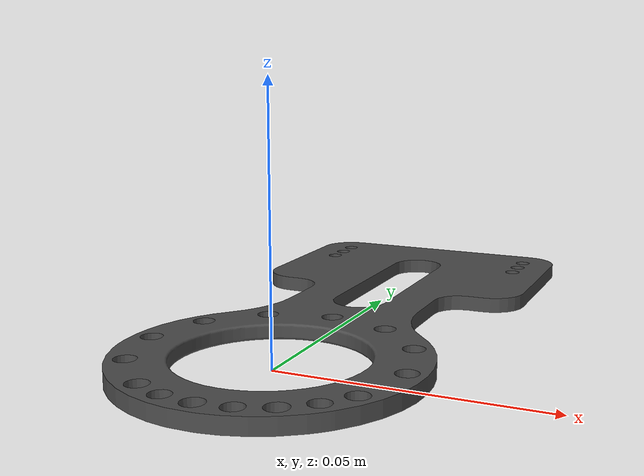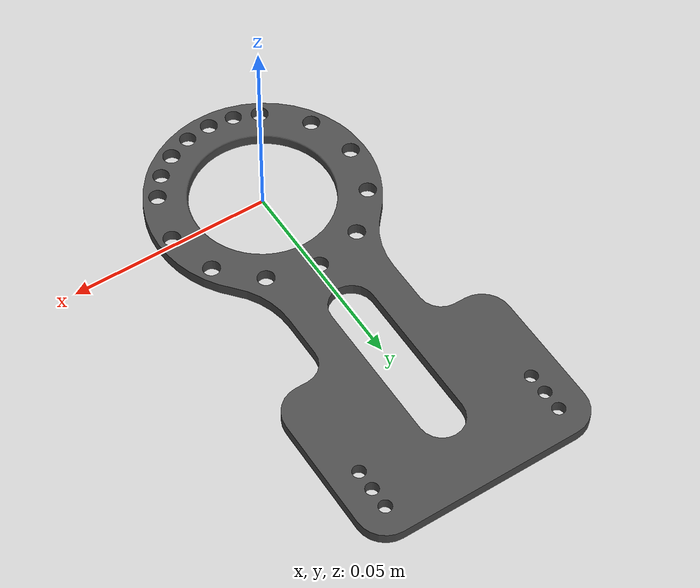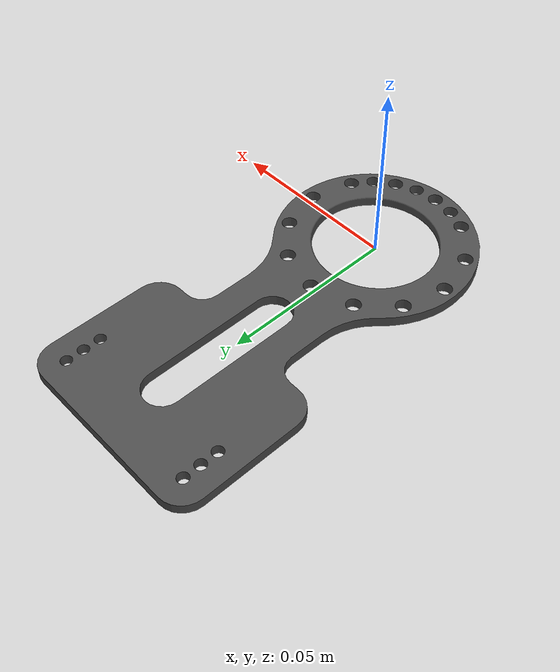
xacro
<?xml version="1.0"?>
<robot xmlns:xacro="http://www.ros.org/wiki/xacro">
  <link name="hand_tool">
    <inertial>
        <origin
          xyz="0 0 0"
          rpy="0 0 0" />
        <mass
          value="0.02" />
        <inertia
          ixx="2.02766547502765E-09"
          ixy="-1.32505200276849E-09"
          ixz="-2.5845091522508E-09"
          iyy="1.87986725225022E-09"
          iyz="3.39471452125439E-09"
          izz="3.17885459163081E-09" />
      </inertial>
      <visual>
        <origin xyz="0 0 0" rpy="0 0 0" />
        <geometry>
          <mesh filename="package://ts_robot_description/mesh/hand_tool/visual/hand_tool.stl" scale = "0.001 0.001 0.001" />
        </geometry>
        <material name="dark_grey"/>
      </visual>
      <collision>
        <origin xyz="0 0 0" rpy="0 0 0" />
        <geometry>
          <mesh filename="package://ts_robot_description/mesh/hand_tool/collision/hand_tool.stl" scale = "0.001 0.001 0.001"/>
        </geometry>
      </collision>
  </link>
</robot>
